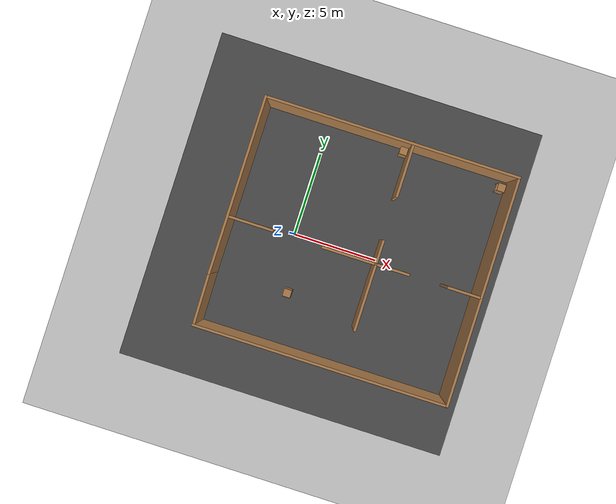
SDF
<sdf version="1.6">
 <world name="default">
  <light name="sun" type="directional">
   <pose>0 0 10 0 -0 0</pose>
   <diffuse>0.8 0.8 0.8 1</diffuse>
   <specular>0.2 0.2 0.2 1</specular>
   <attenuation>
    <range>1000</range>
    <constant>0.9</constant>
    <linear>0.01</linear>
    <quadratic>0.001</quadratic>
   </attenuation>
   <direction>-0.5 0.1 -0.9</direction>
  </light>
  <model name="ground_plane">
   <static>1</static>
   <link name="link">
    <collision name="collision">
     <geometry><plane><normal>0 0 1</normal><size>100 100</size></plane></geometry>
     <surface>
      <contact><collide_bitmask>65535</collide_bitmask></contact>
      <friction><ode><mu>100</mu><mu2>50</mu2></ode></friction>
     </surface>
    </collision>
    <visual name="visual">
     <cast_shadows>0</cast_shadows>
     <geometry><plane><normal>0 0 1</normal><size>100 100</size></plane></geometry>
     <material>
      <script><uri>file://media/materials/scripts/gazebo.material</uri><name>Gazebo/Grey</name></script>
     </material>
    </visual>
   </link>
  </model>
  <gravity>0 0 -9.8</gravity>
  <magnetic_field>6e-06 2.3e-05 -4.2e-05</magnetic_field>
  <atmosphere type="adiabatic"/>
  <physics name="default_physics" default="0" type="ode">
   <max_step_size>0.001</max_step_size>
   <real_time_factor>1</real_time_factor>
   <real_time_update_rate>1000</real_time_update_rate>
  </physics>
  <scene><ambient>0.4 0.4 0.4 1</ambient><background>0.7 0.7 0.7 1</background><shadows>1</shadows></scene>
  <audio><device>default</device></audio>
  <spherical_coordinates>
   <surface_model>EARTH_WGS84</surface_model>
   <latitude_deg>0</latitude_deg>
   <longitude_deg>0</longitude_deg>
   <elevation>0</elevation>
   <heading_deg>0</heading_deg>
  </spherical_coordinates>
  <model name="Apartment_2">
   <pose>3.68109 0.178621 0 0 -0 0</pose>
   <link name="Wall_0">
    <collision name="Wall_0_Collision">
     <geometry><box><size>10.5 0.15 2.5</size></box></geometry>
     <pose>0 0 1.25 0 -0 0</pose>
    </collision>
    <visual name="Wall_0_Visual">
     <pose>0 0 1.25 0 -0 0</pose>
     <geometry><box><size>10.5 0.15 2.5</size></box></geometry>
     <material>
      <script><uri>file://media/materials/scripts/gazebo.material</uri><name>Gazebo/Wood</name></script>
      <ambient>1 1 1 1</ambient>
     </material>
     <meta><layer>0</layer></meta>
    </visual>
    <pose>-7.45109 1.48638 0 0 -0 1.5708</pose>
   </link>
   <link name="Wall_1">
    <collision name="Wall_1_Collision">
     <geometry><box><size>15 0.15 2.5</size></box></geometry>
     <pose>0 0 1.25 0 -0 0</pose>
    </collision>
    <visual name="Wall_1_Visual">
     <pose>0 0 1.25 0 -0 0</pose>
     <geometry><box><size>15 0.15 2.5</size></box></geometry>
     <material>
      <script><uri>file://media/materials/scripts/gazebo.material</uri><name>Gazebo/Wood</name></script>
      <ambient>1 1 1 1</ambient>
     </material>
     <meta><layer>0</layer></meta>
    </visual>
    <pose>-0.026088 6.66138 0 0 -0 0</pose>
   </link>
   <link name="Wall_15">
    <collision name="Wall_15_Collision">
     <geometry><box><size>2.04569 0.15 2.5</size></box></geometry>
     <pose>0 0 1.25 0 -0 0</pose>
    </collision>
    <visual name="Wall_15_Visual">
     <pose>0 0 1.25 0 -0 0</pose>
     <geometry><box><size>2.04569 0.15 2.5</size></box></geometry>
     <material>
      <script><uri>file://media/materials/scripts/gazebo.material</uri><name>Gazebo/Wood</name></script>
      <ambient>1 1 1 1</ambient>
     </material>
     <meta><layer>0</layer></meta>
    </visual>
    <pose>2.20186 -0.37782 0 0 -0 3.14138</pose>
   </link>
   <link name="Wall_17">
    <collision name="Wall_17_Collision">
     <geometry><box><size>4 0.15 2.5</size></box></geometry>
     <pose>0 0 1.25 0 -0 0</pose>
    </collision>
    <visual name="Wall_17_Visual">
     <pose>0 0 1.25 0 -0 0</pose>
     <geometry><box><size>4 0.15 2.5</size></box></geometry>
     <material>
      <script><uri>file://media/materials/scripts/gazebo.material</uri><name>Gazebo/Wood</name></script>
      <ambient>1 1 1 1</ambient>
     </material>
     <meta><layer>0</layer></meta>
    </visual>
    <pose>1.25391 -2.30262 0 0 -0 -1.5708</pose>
   </link>
   <link name="Wall_19">
    <collision name="Wall_19_Collision">
     <geometry><box><size>3.25 0.15 2.5</size></box></geometry>
     <pose>0 0 1.25 0 -0 0</pose>
    </collision>
    <visual name="Wall_19_Visual">
     <pose>0 0 1.25 0 -0 0</pose>
     <geometry><box><size>3.25 0.15 2.5</size></box></geometry>
     <material>
      <script><uri>file://media/materials/scripts/gazebo.material</uri><name>Gazebo/Wood</name></script>
      <ambient>1 1 1 1</ambient>
     </material>
     <meta><layer>0</layer></meta>
    </visual>
    <pose>-0.296088 -0.377621 0 0 -0 3.14159</pose>
   </link>
   <link name="Wall_21">
    <collision name="Wall_21_Collision">
     <geometry><box><size>2.75 0.15 2.5</size></box></geometry>
     <pose>0 0 1.25 0 -0 0</pose>
    </collision>
    <visual name="Wall_21_Visual">
     <pose>0 0 1.25 0 -0 0</pose>
     <geometry><box><size>2.75 0.15 2.5</size></box></geometry>
     <material>
      <script><uri>file://media/materials/scripts/gazebo.material</uri><name>Gazebo/Wood</name></script>
      <ambient>1 1 1 1</ambient>
     </material>
     <meta><layer>0</layer></meta>
    </visual>
    <pose>-6.12856 -0.344012 0 0 -0 3.14159</pose>
   </link>
   <link name="Wall_24">
    <collision name="Wall_24_Collision">
     <geometry><box><size>1.5 0.15 2.5</size></box></geometry>
     <pose>0 0 1.25 0 -0 0</pose>
    </collision>
    <visual name="Wall_24_Visual">
     <pose>0 0 1.25 0 -0 0</pose>
     <geometry><box><size>1.5 0.15 2.5</size></box></geometry>
     <material>
      <script><uri>file://media/materials/scripts/gazebo.material</uri><name>Gazebo/Wood</name></script>
      <ambient>1 1 1 1</ambient>
     </material>
     <meta><layer>0</layer></meta>
    </visual>
    <pose>1.25391 0.297379 0 0 -0 1.5708</pose>
   </link>
   <link name="Wall_26">
    <collision name="Wall_26_Collision">
     <geometry><box><size>3.25 0.15 2.5</size></box></geometry>
     <pose>0 0 1.25 0 -0 0</pose>
    </collision>
    <visual name="Wall_26_Visual">
     <pose>0 0 1.25 0 -0 0</pose>
     <geometry><box><size>3.25 0.15 2.5</size></box></geometry>
     <material>
      <script><uri>file://media/materials/scripts/gazebo.material</uri><name>Gazebo/Wood</name></script>
      <ambient>1 1 1 1</ambient>
     </material>
     <meta><layer>0</layer></meta>
    </visual>
    <pose>1.20968 5.15504 0 0 -0 -1.5708</pose>
   </link>
   <link name="Wall_5">
    <collision name="Wall_5_Collision">
     <geometry><box><size>13.4899 0.15 2.5</size></box></geometry>
     <pose>0 0 1.25 0 -0 0</pose>
    </collision>
    <visual name="Wall_5_Visual">
     <pose>0 0 1.25 0 -0 0</pose>
     <geometry><box><size>13.4899 0.15 2.5</size></box></geometry>
     <material>
      <script><uri>file://media/materials/scripts/gazebo.material</uri><name>Gazebo/Wood</name></script>
      <ambient>1 1 1 1</ambient>
     </material>
     <meta><layer>0</layer></meta>
    </visual>
    <pose>7.42551 -0.008532 0 0 -0 -1.56681</pose>
   </link>
   <link name="Wall_6">
    <collision name="Wall_6_Collision">
     <geometry><box><size>15 0.15 2.5</size></box></geometry>
     <pose>0 0 1.25 0 -0 0</pose>
    </collision>
    <visual name="Wall_6_Visual">
     <pose>0 0 1.25 0 -0 0</pose>
     <geometry><box><size>15 0.15 2.5</size></box></geometry>
     <material>
      <script><uri>file://media/materials/scripts/gazebo.material</uri><name>Gazebo/Wood</name></script>
      <ambient>1 1 1 1</ambient>
     </material>
     <meta><layer>0</layer></meta>
    </visual>
    <pose>0.000512 -6.70504 0 0 -0 3.14159</pose>
   </link>
   <link name="Wall_7">
    <collision name="Wall_7_Collision">
     <geometry><box><size>3.14029 0.15 2.5</size></box></geometry>
     <pose>0 0 1.25 0 -0 0</pose>
    </collision>
    <visual name="Wall_7_Visual">
     <pose>0 0 1.25 0 -0 0</pose>
     <geometry><box><size>3.14029 0.15 2.5</size></box></geometry>
     <material>
      <script><uri>file://media/materials/scripts/gazebo.material</uri><name>Gazebo/Wood</name></script>
      <ambient>1 1 1 1</ambient>
     </material>
     <meta><layer>0</layer></meta>
    </visual>
    <pose>-7.42449 -5.18353 0 0 -0 1.58859</pose>
   </link>
   <link name="Wall_9">
    <collision name="Wall_9_Collision">
     <geometry><box><size>2 0.15 2.5</size></box></geometry>
     <pose>0 0 1.25 0 -0 0</pose>
    </collision>
    <visual name="Wall_9_Visual">
     <pose>0 0 1.25 0 -0 0</pose>
     <geometry><box><size>2 0.15 2.5</size></box></geometry>
     <material>
      <script><uri>file://media/materials/scripts/gazebo.material</uri><name>Gazebo/Wood</name></script>
      <ambient>1 1 1 1</ambient>
     </material>
     <meta><layer>0</layer></meta>
    </visual>
    <pose>6.44191 -0.378019 0 0 -0 3.14159</pose>
   </link>
   <static>1</static>
  </model>
  <model name="asphalt_plane">
   <static>1</static>
   <link name="link">
    <collision name="collision"><geometry><box><size>20 20 0.1</size></box></geometry></collision>
    <visual name="visual">
     <cast_shadows>0</cast_shadows>
     <geometry><box><size>20 20 0.1</size></box></geometry>
     <material>
      <script>
       <uri>model://asphalt_plane/materials/scripts</uri>
       <uri>model://asphalt_plane/materials/textures</uri>
       <name>vrc/asphalt</name>
      </script>
     </material>
    </visual>
   </link>
   <pose>2.19993 0.106469 0 0 -0 0</pose>
  </model>
  <model name="cabinet_0">
   <static>1</static>
   <link name="cabinet_bottom_plate">
    <inertial>
     <pose>0 0 -1 0 -0 0</pose>
     <inertia><ixx>2.05</ixx><ixy>0</ixy><ixz>0</ixz><iyy>2.05</iyy><iyz>0</iyz><izz>2.05</izz></inertia>
     <mass>25</mass>
    </inertial>
    <collision name="cabinet_bottom_plate_geom">
     <pose>0 0 0.01 0 -0 0</pose>
     <geometry><box><size>0.45 0.45 0.02</size></box></geometry>
    </collision>
    <visual name="cabinet_bottom_plate_geom_visual">
     <pose>0 0 0.01 0 -0 0</pose>
     <geometry><box><size>0.45 0.45 0.02</size></box></geometry>
     <material>
      <script><uri>file://media/materials/scripts/gazebo.material</uri><name>Gazebo/Wood</name></script>
     </material>
    </visual>
    <collision name="cabinet_bottom_plate_geom_cabinet_back_plate">
     <pose>0.235 0 0.51 0 -0 0</pose>
     <geometry><box><size>0.02 0.45 1.02</size></box></geometry>
    </collision>
    <visual name="cabinet_bottom_plate_geom_cabinet_back_plate_visual">
     <pose>0.235 0 0.51 0 -0 0</pose>
     <geometry><box><size>0.02 0.45 1.02</size></box></geometry>
     <material>
      <script><uri>file://media/materials/scripts/gazebo.material</uri><name>Gazebo/Wood</name></script>
     </material>
    </visual>
    <collision name="cabinet_bottom_plate_geom_cabinet_left_plate">
     <pose>0 0.235 0.51 0 -0 0</pose>
     <geometry><box><size>0.45 0.02 1.02</size></box></geometry>
    </collision>
    <visual name="cabinet_bottom_plate_geom_cabinet_left_plate_visual">
     <pose>0 0.235 0.51 0 -0 0</pose>
     <geometry><box><size>0.45 0.02 1.02</size></box></geometry>
     <material>
      <script><uri>file://media/materials/scripts/gazebo.material</uri><name>Gazebo/Wood</name></script>
     </material>
    </visual>
    <collision name="cabinet_bottom_plate_geom_cabinet_middle_plate">
     <pose>0 0 0.51 0 -0 0</pose>
     <geometry><box><size>0.45 0.45 0.02</size></box></geometry>
    </collision>
    <visual name="cabinet_bottom_plate_geom_cabinet_middle_plate_visual">
     <pose>0 0 0.51 0 -0 0</pose>
     <geometry><box><size>0.45 0.45 0.02</size></box></geometry>
     <material>
      <script><uri>file://media/materials/scripts/gazebo.material</uri><name>Gazebo/Wood</name></script>
     </material>
    </visual>
    <collision name="cabinet_bottom_plate_geom_cabinet_right_plate">
     <pose>0 -0.235 0.51 0 -0 0</pose>
     <geometry><box><size>0.45 0.02 1.02</size></box></geometry>
    </collision>
    <visual name="cabinet_bottom_plate_geom_cabinet_right_plate_visual">
     <pose>0 -0.235 0.51 0 -0 0</pose>
     <geometry><box><size>0.45 0.02 1.02</size></box></geometry>
     <material>
      <script><uri>file://media/materials/scripts/gazebo.material</uri><name>Gazebo/Wood</name></script>
     </material>
    </visual>
    <collision name="cabinet_bottom_plate_geom_cabinet_top_plate">
     <pose>0 0 1.01 0 -0 0</pose>
     <geometry><box><size>0.45 0.45 0.02</size></box></geometry>
    </collision>
    <visual name="cabinet_bottom_plate_geom_cabinet_top_plate_visual">
     <pose>0 0 1.01 0 -0 0</pose>
     <geometry><box><size>0.45 0.45 0.02</size></box></geometry>
     <material>
      <script><uri>file://media/materials/scripts/gazebo.material</uri><name>Gazebo/Wood</name></script>
     </material>
    </visual>
   </link>
   <pose>10.62 6.25236 0 0 -0 0</pose>
  </model>
  <model name="cabinet_0_clone">
   <static>1</static>
   <link name="cabinet_bottom_plate">
    <inertial>
     <pose>0 0 -1 0 -0 0</pose>
     <inertia><ixx>2.05</ixx><ixy>0</ixy><ixz>0</ixz><iyy>2.05</iyy><iyz>0</iyz><izz>2.05</izz></inertia>
     <mass>25</mass>
    </inertial>
    <collision name="cabinet_bottom_plate_geom">
     <pose>0 0 0.01 0 -0 0</pose>
     <geometry><box><size>0.45 0.45 0.02</size></box></geometry>
    </collision>
    <visual name="cabinet_bottom_plate_geom_visual">
     <pose>0 0 0.01 0 -0 0</pose>
     <geometry><box><size>0.45 0.45 0.02</size></box></geometry>
     <material>
      <script><uri>file://media/materials/scripts/gazebo.material</uri><name>Gazebo/Wood</name></script>
     </material>
    </visual>
    <collision name="cabinet_bottom_plate_geom_cabinet_back_plate">
     <pose>0.235 0 0.51 0 -0 0</pose>
     <geometry><box><size>0.02 0.45 1.02</size></box></geometry>
    </collision>
    <visual name="cabinet_bottom_plate_geom_cabinet_back_plate_visual">
     <pose>0.235 0 0.51 0 -0 0</pose>
     <geometry><box><size>0.02 0.45 1.02</size></box></geometry>
     <material>
      <script><uri>file://media/materials/scripts/gazebo.material</uri><name>Gazebo/Wood</name></script>
     </material>
    </visual>
    <collision name="cabinet_bottom_plate_geom_cabinet_left_plate">
     <pose>0 0.235 0.51 0 -0 0</pose>
     <geometry><box><size>0.45 0.02 1.02</size></box></geometry>
    </collision>
    <visual name="cabinet_bottom_plate_geom_cabinet_left_plate_visual">
     <pose>0 0.235 0.51 0 -0 0</pose>
     <geometry><box><size>0.45 0.02 1.02</size></box></geometry>
     <material>
      <script><uri>file://media/materials/scripts/gazebo.material</uri><name>Gazebo/Wood</name></script>
     </material>
    </visual>
    <collision name="cabinet_bottom_plate_geom_cabinet_middle_plate">
     <pose>0 0 0.51 0 -0 0</pose>
     <geometry><box><size>0.45 0.45 0.02</size></box></geometry>
    </collision>
    <visual name="cabinet_bottom_plate_geom_cabinet_middle_plate_visual">
     <pose>0 0 0.51 0 -0 0</pose>
     <geometry><box><size>0.45 0.45 0.02</size></box></geometry>
     <material>
      <script><uri>file://media/materials/scripts/gazebo.material</uri><name>Gazebo/Wood</name></script>
     </material>
    </visual>
    <collision name="cabinet_bottom_plate_geom_cabinet_right_plate">
     <pose>0 -0.235 0.51 0 -0 0</pose>
     <geometry><box><size>0.45 0.02 1.02</size></box></geometry>
    </collision>
    <visual name="cabinet_bottom_plate_geom_cabinet_right_plate_visual">
     <pose>0 -0.235 0.51 0 -0 0</pose>
     <geometry><box><size>0.45 0.02 1.02</size></box></geometry>
     <material>
      <script><uri>file://media/materials/scripts/gazebo.material</uri><name>Gazebo/Wood</name></script>
     </material>
    </visual>
    <collision name="cabinet_bottom_plate_geom_cabinet_top_plate">
     <pose>0 0 1.01 0 -0 0</pose>
     <geometry><box><size>0.45 0.45 0.02</size></box></geometry>
    </collision>
    <visual name="cabinet_bottom_plate_geom_cabinet_top_plate_visual">
     <pose>0 0 1.01 0 -0 0</pose>
     <geometry><box><size>0.45 0.45 0.02</size></box></geometry>
     <material>
      <script><uri>file://media/materials/scripts/gazebo.material</uri><name>Gazebo/Wood</name></script>
     </material>
    </visual>
   </link>
   <pose>4.57136 6.54758 0 0 -0 0</pose>
  </model>
  <model name="cabinet_0_clone_clone">
   <static>1</static>
   <link name="cabinet_bottom_plate">
    <inertial>
     <pose>0 0 -1 0 -0 0</pose>
     <inertia><ixx>2.05</ixx><ixy>0</ixy><ixz>0</ixz><iyy>2.05</iyy><iyz>0</iyz><izz>2.05</izz></inertia>
     <mass>25</mass>
    </inertial>
    <collision name="cabinet_bottom_plate_geom">
     <pose>0 0 0.01 0 -0 0</pose>
     <geometry><box><size>0.45 0.45 0.02</size></box></geometry>
    </collision>
    <visual name="cabinet_bottom_plate_geom_visual">
     <pose>0 0 0.01 0 -0 0</pose>
     <geometry><box><size>0.45 0.45 0.02</size></box></geometry>
     <material>
      <script><uri>file://media/materials/scripts/gazebo.material</uri><name>Gazebo/Wood</name></script>
     </material>
    </visual>
    <collision name="cabinet_bottom_plate_geom_cabinet_back_plate">
     <pose>0.235 0 0.51 0 -0 0</pose>
     <geometry><box><size>0.02 0.45 1.02</size></box></geometry>
    </collision>
    <visual name="cabinet_bottom_plate_geom_cabinet_back_plate_visual">
     <pose>0.235 0 0.51 0 -0 0</pose>
     <geometry><box><size>0.02 0.45 1.02</size></box></geometry>
     <material>
      <script><uri>file://media/materials/scripts/gazebo.material</uri><name>Gazebo/Wood</name></script>
     </material>
    </visual>
    <collision name="cabinet_bottom_plate_geom_cabinet_left_plate">
     <pose>0 0.235 0.51 0 -0 0</pose>
     <geometry><box><size>0.45 0.02 1.02</size></box></geometry>
    </collision>
    <visual name="cabinet_bottom_plate_geom_cabinet_left_plate_visual">
     <pose>0 0.235 0.51 0 -0 0</pose>
     <geometry><box><size>0.45 0.02 1.02</size></box></geometry>
     <material>
      <script><uri>file://media/materials/scripts/gazebo.material</uri><name>Gazebo/Wood</name></script>
     </material>
    </visual>
    <collision name="cabinet_bottom_plate_geom_cabinet_middle_plate">
     <pose>0 0 0.51 0 -0 0</pose>
     <geometry><box><size>0.45 0.45 0.02</size></box></geometry>
    </collision>
    <visual name="cabinet_bottom_plate_geom_cabinet_middle_plate_visual">
     <pose>0 0 0.51 0 -0 0</pose>
     <geometry><box><size>0.45 0.45 0.02</size></box></geometry>
     <material>
      <script><uri>file://media/materials/scripts/gazebo.material</uri><name>Gazebo/Wood</name></script>
     </material>
    </visual>
    <collision name="cabinet_bottom_plate_geom_cabinet_right_plate">
     <pose>0 -0.235 0.51 0 -0 0</pose>
     <geometry><box><size>0.45 0.02 1.02</size></box></geometry>
    </collision>
    <visual name="cabinet_bottom_plate_geom_cabinet_right_plate_visual">
     <pose>0 -0.235 0.51 0 -0 0</pose>
     <geometry><box><size>0.45 0.02 1.02</size></box></geometry>
     <material>
      <script><uri>file://media/materials/scripts/gazebo.material</uri><name>Gazebo/Wood</name></script>
     </material>
    </visual>
    <collision name="cabinet_bottom_plate_geom_cabinet_top_plate">
     <pose>0 0 1.01 0 -0 0</pose>
     <geometry><box><size>0.45 0.45 0.02</size></box></geometry>
    </collision>
    <visual name="cabinet_bottom_plate_geom_cabinet_top_plate_visual">
     <pose>0 0 1.01 0 -0 0</pose>
     <geometry><box><size>0.45 0.45 0.02</size></box></geometry>
     <material>
      <script><uri>file://media/materials/scripts/gazebo.material</uri><name>Gazebo/Wood</name></script>
     </material>
    </visual>
   </link>
   <pose>0.652105 -3.37342 0 0 -0 0</pose>
  </model>
 </world>
</sdf>
